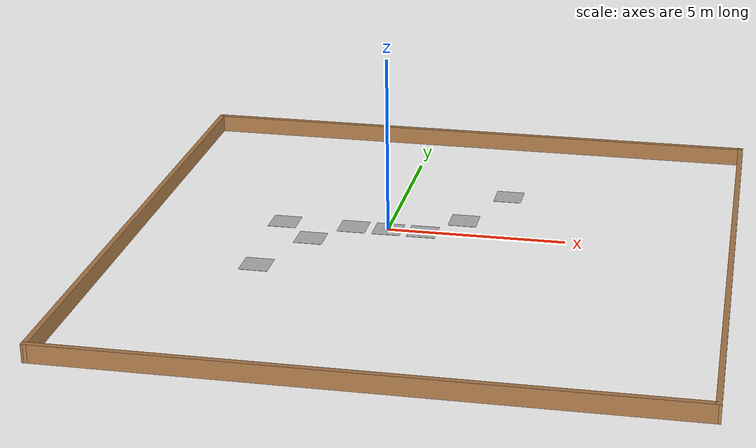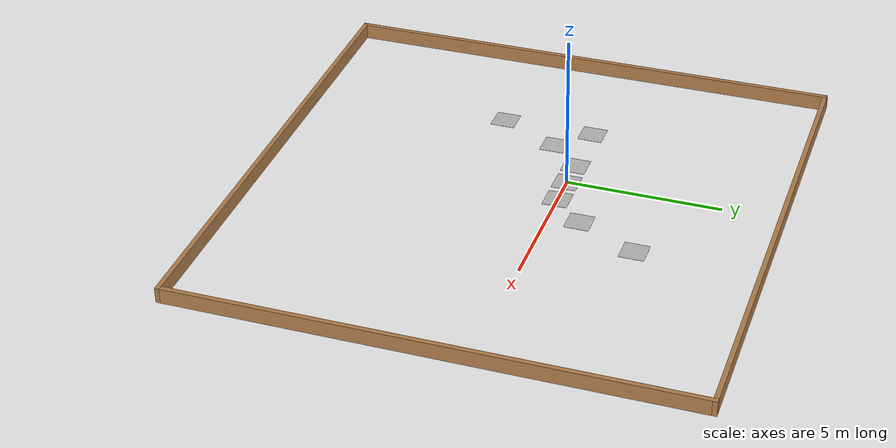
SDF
<sdf version="1.6">
 <world name="indoor_arena">
  <include><uri>model://sun</uri></include>
  <model name="casa_laranja"><include><uri>model://casa_laranja</uri><pose>3 3 0 0 0 0</pose></include></model>
  <model name="circulo_azul">
   <include><uri>model://circulo_azul</uri><pose>-3 -3 0 0 0 0</pose></include>
  </model>
  <model name="cruz_rosa"><include><uri>model://cruz_rosa</uri><pose>1 0 0 0 0 0</pose></include></model>
  <model name="estrela_verde">
   <include><uri>model://estrela_verde</uri><pose>-1 0 0 0 0 0</pose></include>
  </model>
  <model name="hexagono_vermelho">
   <include><uri>model://hexagono_vermelho</uri><pose>2 1 0 0 0 0</pose></include>
  </model>
  <model name="pentagono_marrom">
   <include><uri>model://pentagono_marrom</uri><pose>-2 -1 0 0 0 0</pose></include>
  </model>
  <model name="quadrado_marrom"><include><uri>model://quadrado_marrom</uri></include></model>
  <model name="triangulo_azul">
   <include><uri>model://triangulo_azul</uri><pose>-3 0 0 0 0 0</pose></include>
  </model>
  <model name="parede"><include><uri>model://parede</uri></include></model>
 </world>
</sdf>

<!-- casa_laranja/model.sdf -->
<sdf version='1.7'>
  <model name='casa_laranja'>
    <link name='link'>
      <visual name='visual'>
        <geometry>
          <box>
            <size>0.8 0.8 0.006</size>
          </box>
        </geometry>
        <material>
          <script>
            <uri>model://casa_laranja/materials/scripts/</uri>
            <uri>model://casa_laranja/materials/textures/</uri>
            <name>casa_laranja</name>
          </script>
        </material>
      </visual>
      <collision name='collision'>
        <geometry>
          <box>
            <size>0.8 0.8 0.005</size>
          </box>
        </geometry>
      </collision>
    </link>
  </model>
</sdf>

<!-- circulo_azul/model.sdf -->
<sdf version='1.7'>
  <model name='circulo_azul'>
    <link name='link'>
      <visual name='visual'>
        <geometry>
          <box>
            <size>0.8 0.8 0.006</size>
          </box>
        </geometry>
        <material>
          <script>
            <uri>model://circulo_azul/materials/scripts/</uri>
            <uri>model://circulo_azul/materials/textures/</uri>
            <name>circulo_azul</name>
          </script>
        </material>
      </visual>
      <collision name='collision'>
        <geometry>
          <box>
            <size>0.8 0.8 0.005</size>
          </box>
        </geometry>
      </collision>
    </link>
  </model>
</sdf>

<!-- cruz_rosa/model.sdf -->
<sdf version='1.7'>
  <model name='cruz_rosa'>
    <link name='link'>
      <visual name='visual'>
        <geometry>
          <box>
            <size>0.8 0.8 0.006</size>
          </box>
        </geometry>
        <material>
          <script>
            <uri>model://cruz_rosa/materials/scripts/</uri>
            <uri>model://cruz_rosa/materials/textures/</uri>
            <name>cruz_rosa</name>
          </script>
        </material>
      </visual>
      <collision name='collision'>
        <geometry>
          <box>
            <size>0.8 0.8 0.005</size>
          </box>
        </geometry>
      </collision>
    </link>
  </model>
</sdf>

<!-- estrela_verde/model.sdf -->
<sdf version='1.7'>
  <model name='estrela_verde'>
    <link name='link'>
      <visual name='visual'>
        <geometry>
          <box>
            <size>0.8 0.8 0.006</size>
          </box>
        </geometry>
        <material>
          <script>
            <uri>model://estrela_verde/materials/scripts/</uri>
            <uri>model://estrela_verde/materials/textures/</uri>
            <name>estrela_verde</name>
          </script>
        </material>
      </visual>
      <collision name='collision'>
        <geometry>
          <box>
            <size>0.8 0.8 0.005</size>
          </box>
        </geometry>
      </collision>
    </link>
  </model>
</sdf>

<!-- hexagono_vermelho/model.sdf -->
<sdf version='1.7'>
  <model name='hexagono_vermelho'>
    <link name='link'>
      <visual name='visual'>
        <geometry>
          <box>
            <size>0.8 0.8 0.006</size>
          </box>
        </geometry>
        <material>
          <script>
            <uri>model://hexagono_vermelho/materials/scripts/</uri>
            <uri>model://hexagono_vermelho/materials/textures/</uri>
            <name>hexagono_vermelho</name>
          </script>
        </material>
      </visual>
      <collision name='collision'>
        <geometry>
          <box>
            <size>0.8 0.8 0.005</size>
          </box>
        </geometry>
      </collision>
    </link>
  </model>
</sdf>

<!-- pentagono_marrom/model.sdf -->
<sdf version='1.7'>
  <model name='pentagono_marrom'>
    <link name='link'>
      <visual name='visual'>
        <geometry>
          <box>
            <size>0.8 0.8 0.006</size>
          </box>
        </geometry>
        <material>
          <script>
            <uri>model://pentagono_marrom/materials/scripts/</uri>
            <uri>model://pentagono_marrom/materials/textures/</uri>
            <name>pentagono_marrom</name>
          </script>
        </material>
      </visual>
      <collision name='collision'>
        <geometry>
          <box>
            <size>0.8 0.8 0.005</size>
          </box>
        </geometry>
      </collision>
    </link>
  </model>
</sdf>

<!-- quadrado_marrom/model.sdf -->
<sdf version='1.7'>
  <model name='quadrado_marrom'>
    <link name='link'>
      <visual name='visual'>
        <geometry>
          <box>
            <size>0.8 0.8 0.006</size>
          </box>
        </geometry>
        <material>
          <script>
            <uri>model://quadrado_marrom/materials/scripts/</uri>
            <uri>model://quadrado_marrom/materials/textures/</uri>
            <name>quadrado_marrom</name>
          </script>
        </material>
      </visual>
      <collision name='collision'>
        <geometry>
          <box>
            <size>0.8 0.8 0.005</size>
          </box>
        </geometry>
      </collision>
    </link>
  </model>
</sdf>

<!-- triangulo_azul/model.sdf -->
<sdf version='1.7'>
  <model name='triangulo_azul'>
    <link name='link'>
      <visual name='visual'>
        <geometry>
          <box>
            <size>0.8 0.8 0.006</size>
          </box>
        </geometry>
        <material>
          <script>
            <uri>model://triangulo_azul/materials/scripts/</uri>
            <uri>model://triangulo_azul/materials/textures/</uri>
            <name>triangulo_azul</name>
          </script>
        </material>
      </visual>
      <collision name='collision'>
        <geometry>
          <box>
            <size>0.8 0.8 0.005</size>
          </box>
        </geometry>
      </collision>
    </link>
  </model>
</sdf>

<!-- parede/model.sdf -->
<sdf version='1.7'>
  <model name='parede'>
    <pose>1.329 -1.28727 0 0 -0 0</pose>
    <link name='Wall_11'>
      <collision name='Wall_11_Collision'>
        <geometry>
          <box>
            <size>16.6199 0.15 0.5</size>
          </box>
        </geometry>
        <pose>0 0 0.25 0 -0 0</pose>
      </collision>
      <visual name='Wall_11_Visual'>
        <pose>0 0 0.25 0 -0 0</pose>
        <geometry>
          <box>
            <size>16.6199 0.15 0.5</size>
          </box>
        </geometry>
        <material>
          <script>
            <uri>file://media/materials/scripts/gazebo.material</uri>
            <name>Gazebo/Wood</name>
          </script>
          <ambient>1 1 1 1</ambient>
        </material>
        <meta>
          <layer>0</layer>
        </meta>
      </visual>
      <pose>-8.2472 0.00012 0 0 -0 -1.57077</pose>
    </link>
    <link name='Wall_14'>
      <collision name='Wall_14_Collision'>
        <geometry>
          <box>
            <size>16.5 0.15 0.5</size>
          </box>
        </geometry>
        <pose>0 0 0.25 0 -0 0</pose>
      </collision>
      <visual name='Wall_14_Visual'>
        <pose>0 0 0.25 0 -0 0</pose>
        <geometry>
          <box>
            <size>16.5 0.15 0.5</size>
          </box>
        </geometry>
        <material>
          <script>
            <uri>file://media/materials/scripts/gazebo.material</uri>
            <name>Gazebo/Wood</name>
          </script>
          <ambient>1 1 1 1</ambient>
        </material>
        <meta>
          <layer>0</layer>
        </meta>
      </visual>
      <pose>8.247 0.060273 0 0 -0 -1.5708</pose>
    </link>
    <link name='Wall_17'>
      <collision name='Wall_17_Collision'>
        <geometry>
          <box>
            <size>16.6453 0.15 0.5</size>
          </box>
        </geometry>
        <pose>0 0 0.25 0 -0 0</pose>
      </collision>
      <visual name='Wall_17_Visual'>
        <pose>0 0 0.25 0 -0 0</pose>
        <geometry>
          <box>
            <size>16.6453 0.15 0.5</size>
          </box>
        </geometry>
        <material>
          <script>
            <uri>file://media/materials/scripts/gazebo.material</uri>
            <name>Gazebo/Wood</name>
          </script>
          <ambient>1 1 1 1</ambient>
        </material>
        <meta>
          <layer>0</layer>
        </meta>
      </visual>
      <pose>-0 -8.17473 0 0 -0 -3.13432</pose>
    </link>
    <link name='Wall_6'>
      <collision name='Wall_6_Collision'>
        <geometry>
          <box>
            <size>16.6449 0.15 0.5</size>
          </box>
        </geometry>
        <pose>0 0 0.25 0 -0 0</pose>
      </collision>
      <visual name='Wall_6_Visual'>
        <pose>0 0 0.25 0 -0 0</pose>
        <geometry>
          <box>
            <size>16.6449 0.15 0.5</size>
          </box>
        </geometry>
        <material>
          <script>
            <uri>file://media/materials/scripts/gazebo.material</uri>
            <name>Gazebo/Wood</name>
          </script>
          <ambient>1 0.764706 0.305882 1</ambient>
        </material>
        <meta>
          <layer>0</layer>
        </meta>
      </visual>
      <pose>-0.000196 8.23512 0 0 -0 1.8e-05</pose>
    </link>
    <static>1</static>
  </model>
</sdf>
